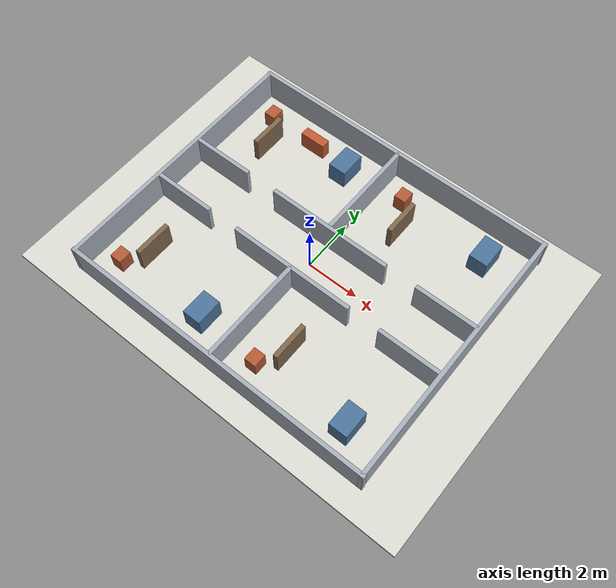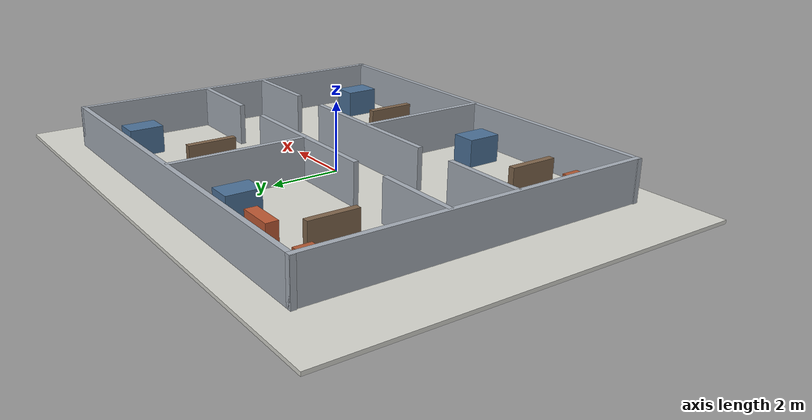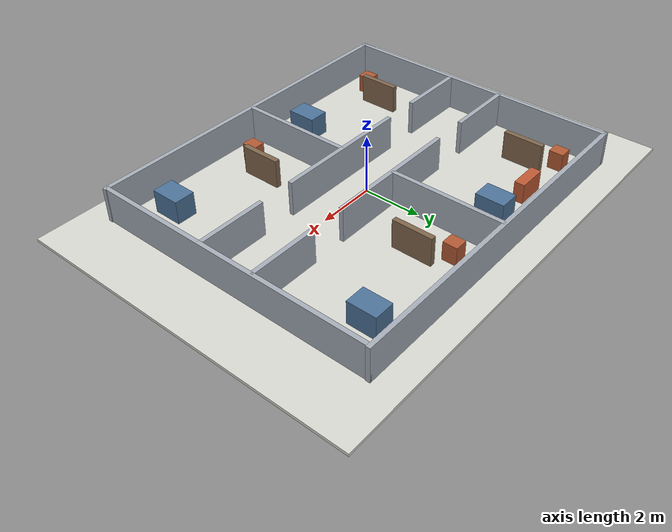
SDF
<?xml version="1.0"?>
<!-- Original Search Squad world. State plugin supplies explicit simulation-assisted localization and evaluation. -->
<sdf version="1.6">
  <world name="search_squad">
    <gravity>0 0 -9.81</gravity>
    <physics name="default" type="ode">
      <max_step_size>0.002</max_step_size>
      <real_time_update_rate>500</real_time_update_rate>
    </physics>
    <scene>
      <ambient>0.65 0.65 0.65 1</ambient>
      <shadows>false</shadows>
    </scene>
    <light name="ceiling_light" type="directional">
      <pose>0 0 10 0 0 0</pose>
      <diffuse>0.8 0.8 0.8 1</diffuse>
      <direction>-0.3 0.2 -1</direction>
    </light>
    <model name="floor">
      <static>true</static>
      <pose>0 0 -0.05 0 0 0</pose>
      <link name="body">
        <collision name="collision">
          <geometry>
            <box>
              <size>16 12 0.1</size>
            </box>
          </geometry>
        </collision>
        <visual name="visual">
          <geometry>
            <box>
              <size>16 12 0.1</size>
            </box>
          </geometry>
          <material>
            <ambient>0.85 0.85 0.82 1</ambient>
            <diffuse>0.85 0.85 0.82 1</diffuse>
          </material>
        </visual>
      </link>
    </model>
    <model name="outer_north">
      <static>true</static>
      <pose>0 5 0.6 0 0 0</pose>
      <link name="body">
        <collision name="collision">
          <geometry>
            <box>
              <size>12.2 0.15 1.2</size>
            </box>
          </geometry>
        </collision>
        <visual name="visual">
          <geometry>
            <box>
              <size>12.2 0.15 1.2</size>
            </box>
          </geometry>
          <material>
            <ambient>0.65 0.68 0.72 1</ambient>
            <diffuse>0.65 0.68 0.72 1</diffuse>
          </material>
        </visual>
      </link>
    </model>
    <model name="outer_south">
      <static>true</static>
      <pose>0 -5 0.6 0 0 0</pose>
      <link name="body">
        <collision name="collision">
          <geometry>
            <box>
              <size>12.2 0.15 1.2</size>
            </box>
          </geometry>
        </collision>
        <visual name="visual">
          <geometry>
            <box>
              <size>12.2 0.15 1.2</size>
            </box>
          </geometry>
          <material>
            <ambient>0.65 0.68 0.72 1</ambient>
            <diffuse>0.65 0.68 0.72 1</diffuse>
          </material>
        </visual>
      </link>
    </model>
    <model name="outer_west">
      <static>true</static>
      <pose>-6 0 0.6 0 0 0</pose>
      <link name="body">
        <collision name="collision">
          <geometry>
            <box>
              <size>0.15 10.15 1.2</size>
            </box>
          </geometry>
        </collision>
        <visual name="visual">
          <geometry>
            <box>
              <size>0.15 10.15 1.2</size>
            </box>
          </geometry>
          <material>
            <ambient>0.65 0.68 0.72 1</ambient>
            <diffuse>0.65 0.68 0.72 1</diffuse>
          </material>
        </visual>
      </link>
    </model>
    <model name="outer_east">
      <static>true</static>
      <pose>6 0 0.6 0 0 0</pose>
      <link name="body">
        <collision name="collision">
          <geometry>
            <box>
              <size>0.15 10.15 1.2</size>
            </box>
          </geometry>
        </collision>
        <visual name="visual">
          <geometry>
            <box>
              <size>0.15 10.15 1.2</size>
            </box>
          </geometry>
          <material>
            <ambient>0.65 0.68 0.72 1</ambient>
            <diffuse>0.65 0.68 0.72 1</diffuse>
          </material>
        </visual>
      </link>
    </model>
    <model name="north_room_divider">
      <static>true</static>
      <pose>0 3 0.6 0 0 0</pose>
      <link name="body">
        <collision name="collision">
          <geometry>
            <box>
              <size>0.15 4 1.2</size>
            </box>
          </geometry>
        </collision>
        <visual name="visual">
          <geometry>
            <box>
              <size>0.15 4 1.2</size>
            </box>
          </geometry>
          <material>
            <ambient>0.65 0.68 0.72 1</ambient>
            <diffuse>0.65 0.68 0.72 1</diffuse>
          </material>
        </visual>
      </link>
    </model>
    <model name="north_corridor_wall_0">
      <static>true</static>
      <pose>-4.8 1 0.6 0 0 0</pose>
      <link name="body">
        <collision name="collision">
          <geometry>
            <box>
              <size>2.4 0.15 1.2</size>
            </box>
          </geometry>
        </collision>
        <visual name="visual">
          <geometry>
            <box>
              <size>2.4 0.15 1.2</size>
            </box>
          </geometry>
          <material>
            <ambient>0.65 0.68 0.72 1</ambient>
            <diffuse>0.65 0.68 0.72 1</diffuse>
          </material>
        </visual>
      </link>
    </model>
    <model name="north_corridor_wall_1">
      <static>true</static>
      <pose>0.0 1 0.6 0 0 0</pose>
      <link name="body">
        <collision name="collision">
          <geometry>
            <box>
              <size>4.8 0.15 1.2</size>
            </box>
          </geometry>
        </collision>
        <visual name="visual">
          <geometry>
            <box>
              <size>4.8 0.15 1.2</size>
            </box>
          </geometry>
          <material>
            <ambient>0.65 0.68 0.72 1</ambient>
            <diffuse>0.65 0.68 0.72 1</diffuse>
          </material>
        </visual>
      </link>
    </model>
    <model name="north_corridor_wall_2">
      <static>true</static>
      <pose>4.8 1 0.6 0 0 0</pose>
      <link name="body">
        <collision name="collision">
          <geometry>
            <box>
              <size>2.4 0.15 1.2</size>
            </box>
          </geometry>
        </collision>
        <visual name="visual">
          <geometry>
            <box>
              <size>2.4 0.15 1.2</size>
            </box>
          </geometry>
          <material>
            <ambient>0.65 0.68 0.72 1</ambient>
            <diffuse>0.65 0.68 0.72 1</diffuse>
          </material>
        </visual>
      </link>
    </model>
    <model name="north_west_cabinet">
      <static>true</static>
      <pose>-1.45 3.8 0.4 0 0 0</pose>
      <link name="body">
        <collision name="collision">
          <geometry>
            <box>
              <size>0.7 1.0 0.8</size>
            </box>
          </geometry>
        </collision>
        <visual name="visual">
          <geometry>
            <box>
              <size>0.7 1.0 0.8</size>
            </box>
          </geometry>
          <material>
            <ambient>0.3 0.45 0.6 1</ambient>
            <diffuse>0.3 0.45 0.6 1</diffuse>
          </material>
        </visual>
      </link>
    </model>
    <model name="north_west_screen">
      <static>true</static>
      <pose>-4.4 3 0.5 0 0 0</pose>
      <link name="body">
        <collision name="collision">
          <geometry>
            <box>
              <size>0.18 1.4 1.0</size>
            </box>
          </geometry>
        </collision>
        <visual name="visual">
          <geometry>
            <box>
              <size>0.18 1.4 1.0</size>
            </box>
          </geometry>
          <material>
            <ambient>0.5 0.4 0.3 1</ambient>
            <diffuse>0.5 0.4 0.3 1</diffuse>
          </material>
        </visual>
      </link>
    </model>
    <model name="north_west_hidden_box">
      <static>true</static>
      <pose>-5.0 4.0 0.325 0 0 0</pose>
      <link name="body">
        <collision name="collision">
          <geometry>
            <box>
              <size>0.45 0.5 0.65</size>
            </box>
          </geometry>
        </collision>
        <visual name="visual">
          <geometry>
            <box>
              <size>0.45 0.5 0.65</size>
            </box>
          </geometry>
          <material>
            <ambient>0.7 0.35 0.2 1</ambient>
            <diffuse>0.7 0.35 0.2 1</diffuse>
          </material>
        </visual>
      </link>
    </model>
    <model name="north_east_cabinet">
      <static>true</static>
      <pose>4.55 3.8 0.4 0 0 0</pose>
      <link name="body">
        <collision name="collision">
          <geometry>
            <box>
              <size>0.7 1.0 0.8</size>
            </box>
          </geometry>
        </collision>
        <visual name="visual">
          <geometry>
            <box>
              <size>0.7 1.0 0.8</size>
            </box>
          </geometry>
          <material>
            <ambient>0.3 0.45 0.6 1</ambient>
            <diffuse>0.3 0.45 0.6 1</diffuse>
          </material>
        </visual>
      </link>
    </model>
    <model name="north_east_screen">
      <static>true</static>
      <pose>1.6 3 0.5 0 0 0</pose>
      <link name="body">
        <collision name="collision">
          <geometry>
            <box>
              <size>0.18 1.4 1.0</size>
            </box>
          </geometry>
        </collision>
        <visual name="visual">
          <geometry>
            <box>
              <size>0.18 1.4 1.0</size>
            </box>
          </geometry>
          <material>
            <ambient>0.5 0.4 0.3 1</ambient>
            <diffuse>0.5 0.4 0.3 1</diffuse>
          </material>
        </visual>
      </link>
    </model>
    <model name="north_east_hidden_box">
      <static>true</static>
      <pose>1.0 4.0 0.325 0 0 0</pose>
      <link name="body">
        <collision name="collision">
          <geometry>
            <box>
              <size>0.45 0.5 0.65</size>
            </box>
          </geometry>
        </collision>
        <visual name="visual">
          <geometry>
            <box>
              <size>0.45 0.5 0.65</size>
            </box>
          </geometry>
          <material>
            <ambient>0.7 0.35 0.2 1</ambient>
            <diffuse>0.7 0.35 0.2 1</diffuse>
          </material>
        </visual>
      </link>
    </model>
    <model name="south_room_divider">
      <static>true</static>
      <pose>0 -3 0.6 0 0 0</pose>
      <link name="body">
        <collision name="collision">
          <geometry>
            <box>
              <size>0.15 4 1.2</size>
            </box>
          </geometry>
        </collision>
        <visual name="visual">
          <geometry>
            <box>
              <size>0.15 4 1.2</size>
            </box>
          </geometry>
          <material>
            <ambient>0.65 0.68 0.72 1</ambient>
            <diffuse>0.65 0.68 0.72 1</diffuse>
          </material>
        </visual>
      </link>
    </model>
    <model name="south_corridor_wall_0">
      <static>true</static>
      <pose>-4.8 -1 0.6 0 0 0</pose>
      <link name="body">
        <collision name="collision">
          <geometry>
            <box>
              <size>2.4 0.15 1.2</size>
            </box>
          </geometry>
        </collision>
        <visual name="visual">
          <geometry>
            <box>
              <size>2.4 0.15 1.2</size>
            </box>
          </geometry>
          <material>
            <ambient>0.65 0.68 0.72 1</ambient>
            <diffuse>0.65 0.68 0.72 1</diffuse>
          </material>
        </visual>
      </link>
    </model>
    <model name="south_corridor_wall_1">
      <static>true</static>
      <pose>0.0 -1 0.6 0 0 0</pose>
      <link name="body">
        <collision name="collision">
          <geometry>
            <box>
              <size>4.8 0.15 1.2</size>
            </box>
          </geometry>
        </collision>
        <visual name="visual">
          <geometry>
            <box>
              <size>4.8 0.15 1.2</size>
            </box>
          </geometry>
          <material>
            <ambient>0.65 0.68 0.72 1</ambient>
            <diffuse>0.65 0.68 0.72 1</diffuse>
          </material>
        </visual>
      </link>
    </model>
    <model name="south_corridor_wall_2">
      <static>true</static>
      <pose>4.8 -1 0.6 0 0 0</pose>
      <link name="body">
        <collision name="collision">
          <geometry>
            <box>
              <size>2.4 0.15 1.2</size>
            </box>
          </geometry>
        </collision>
        <visual name="visual">
          <geometry>
            <box>
              <size>2.4 0.15 1.2</size>
            </box>
          </geometry>
          <material>
            <ambient>0.65 0.68 0.72 1</ambient>
            <diffuse>0.65 0.68 0.72 1</diffuse>
          </material>
        </visual>
      </link>
    </model>
    <model name="south_west_cabinet">
      <static>true</static>
      <pose>-1.45 -3.8 0.4 0 0 0</pose>
      <link name="body">
        <collision name="collision">
          <geometry>
            <box>
              <size>0.7 1.0 0.8</size>
            </box>
          </geometry>
        </collision>
        <visual name="visual">
          <geometry>
            <box>
              <size>0.7 1.0 0.8</size>
            </box>
          </geometry>
          <material>
            <ambient>0.3 0.45 0.6 1</ambient>
            <diffuse>0.3 0.45 0.6 1</diffuse>
          </material>
        </visual>
      </link>
    </model>
    <model name="south_west_screen">
      <static>true</static>
      <pose>-4.4 -3 0.5 0 0 0</pose>
      <link name="body">
        <collision name="collision">
          <geometry>
            <box>
              <size>0.18 1.4 1.0</size>
            </box>
          </geometry>
        </collision>
        <visual name="visual">
          <geometry>
            <box>
              <size>0.18 1.4 1.0</size>
            </box>
          </geometry>
          <material>
            <ambient>0.5 0.4 0.3 1</ambient>
            <diffuse>0.5 0.4 0.3 1</diffuse>
          </material>
        </visual>
      </link>
    </model>
    <model name="south_west_hidden_box">
      <static>true</static>
      <pose>-5.0 -4.0 0.325 0 0 0</pose>
      <link name="body">
        <collision name="collision">
          <geometry>
            <box>
              <size>0.45 0.5 0.65</size>
            </box>
          </geometry>
        </collision>
        <visual name="visual">
          <geometry>
            <box>
              <size>0.45 0.5 0.65</size>
            </box>
          </geometry>
          <material>
            <ambient>0.7 0.35 0.2 1</ambient>
            <diffuse>0.7 0.35 0.2 1</diffuse>
          </material>
        </visual>
      </link>
    </model>
    <model name="south_east_cabinet">
      <static>true</static>
      <pose>4.55 -3.8 0.4 0 0 0</pose>
      <link name="body">
        <collision name="collision">
          <geometry>
            <box>
              <size>0.7 1.0 0.8</size>
            </box>
          </geometry>
        </collision>
        <visual name="visual">
          <geometry>
            <box>
              <size>0.7 1.0 0.8</size>
            </box>
          </geometry>
          <material>
            <ambient>0.3 0.45 0.6 1</ambient>
            <diffuse>0.3 0.45 0.6 1</diffuse>
          </material>
        </visual>
      </link>
    </model>
    <model name="south_east_screen">
      <static>true</static>
      <pose>1.6 -3 0.5 0 0 0</pose>
      <link name="body">
        <collision name="collision">
          <geometry>
            <box>
              <size>0.18 1.4 1.0</size>
            </box>
          </geometry>
        </collision>
        <visual name="visual">
          <geometry>
            <box>
              <size>0.18 1.4 1.0</size>
            </box>
          </geometry>
          <material>
            <ambient>0.5 0.4 0.3 1</ambient>
            <diffuse>0.5 0.4 0.3 1</diffuse>
          </material>
        </visual>
      </link>
    </model>
    <model name="south_east_hidden_box">
      <static>true</static>
      <pose>1.0 -4.0 0.325 0 0 0</pose>
      <link name="body">
        <collision name="collision">
          <geometry>
            <box>
              <size>0.45 0.5 0.65</size>
            </box>
          </geometry>
        </collision>
        <visual name="visual">
          <geometry>
            <box>
              <size>0.45 0.5 0.65</size>
            </box>
          </geometry>
          <material>
            <ambient>0.7 0.35 0.2 1</ambient>
            <diffuse>0.7 0.35 0.2 1</diffuse>
          </material>
        </visual>
      </link>
    </model>
    <model name="room_box">
      <static>true</static>
      <pose>-3 4.0 0.35 0 0 0</pose>
      <link name="body">
        <collision name="collision">
          <geometry>
            <box>
              <size>1.0 0.35 0.7</size>
            </box>
          </geometry>
        </collision>
        <visual name="visual">
          <geometry>
            <box>
              <size>1.0 0.35 0.7</size>
            </box>
          </geometry>
          <material>
            <ambient>0.75 0.35 0.2 1</ambient>
            <diffuse>0.75 0.35 0.2 1</diffuse>
          </material>
        </visual>
      </link>
    </model>
    <plugin name="simulation_state" filename="libgazebo_ros_state.so">
      <ros>
        <namespace>/simulation</namespace>
        <argument>--ros-args</argument>
        <argument>-p</argument>
        <argument>use_sim_time:=true</argument>
      </ros>
      <update_rate>5.0</update_rate>
    </plugin>
    <gui fullscreen="false">
      <camera name="fleet_overview">
        <pose>10 -12 14 0 0.73 2.265</pose>
        <view_controller>orbit</view_controller>
      </camera>
    </gui>
  </world>
</sdf>
